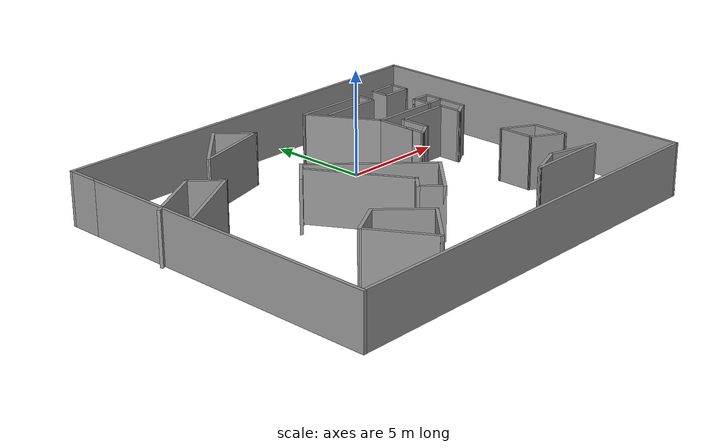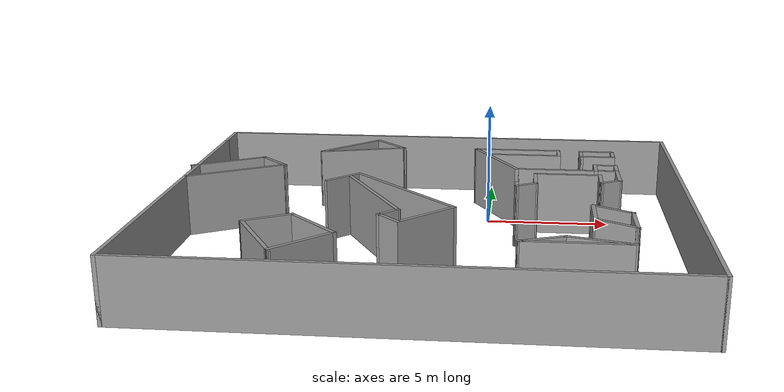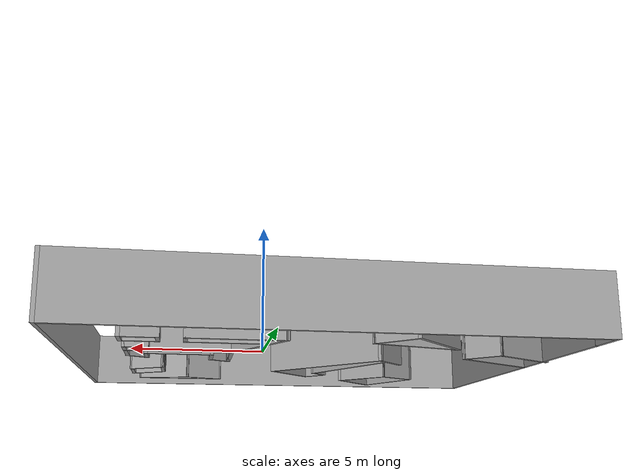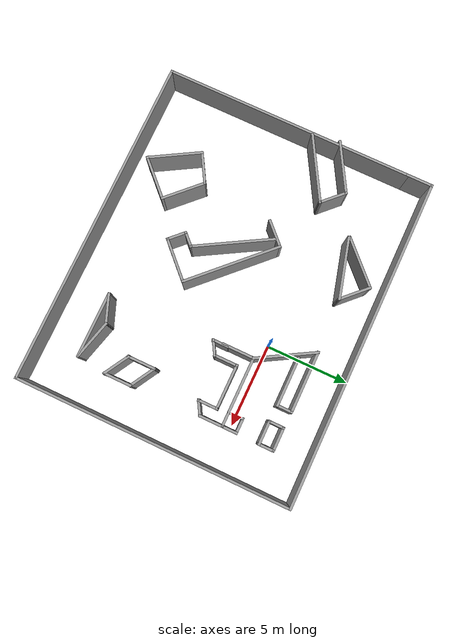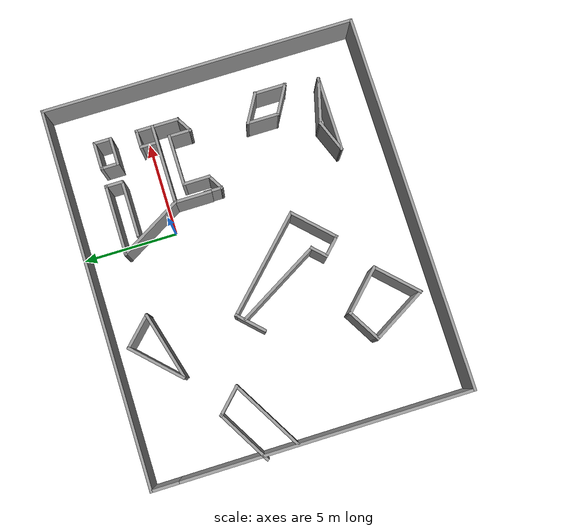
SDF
<?xml version='1.0'?>
<sdf version='1.7'>
  <model name='paper6'>
    <pose>-2.36416 -3.61547 0 0 -0 0</pose>
    <link name='Wall_10'>
      <collision name='Wall_10_Collision'>
        <geometry>
          <box>
            <size>4.25 0.15 2.5</size>
          </box>
        </geometry>
        <pose>0 0 1.25 0 -0 0</pose>
      </collision>
      <visual name='Wall_10_Visual'>
        <pose>0 0 1.25 0 -0 0</pose>
        <geometry>
          <box>
            <size>4.25 0.15 2.5</size>
          </box>
        </geometry>
        <material>
          <script>
            <uri>file://media/materials/scripts/gazebo.material</uri>
            <name>Gazebo/Grey</name>
          </script>
          <ambient>1 1 1 1</ambient>
        </material>
        <meta>
          <layer>0</layer>
        </meta>
      </visual>
      <pose>-7.97317 1.83972 0 0 -0 0.523599</pose>
    </link>
    <link name='Wall_11'>
      <collision name='Wall_11_Collision'>
        <geometry>
          <box>
            <size>1.75 0.15 2.5</size>
          </box>
        </geometry>
        <pose>0 0 1.25 0 -0 0</pose>
      </collision>
      <visual name='Wall_11_Visual'>
        <pose>0 0 1.25 0 -0 0</pose>
        <geometry>
          <box>
            <size>1.75 0.15 2.5</size>
          </box>
        </geometry>
        <material>
          <script>
            <uri>file://media/materials/scripts/gazebo.material</uri>
            <name>Gazebo/Grey</name>
          </script>
          <ambient>1 1 1 1</ambient>
        </material>
        <meta>
          <layer>0</layer>
        </meta>
      </visual>
      <pose>-6.76351 3.43041 0 0 -0 2.35619</pose>
    </link>
    <link name='Wall_12'>
      <collision name='Wall_12_Collision'>
        <geometry>
          <box>
            <size>3.25 0.15 2.5</size>
          </box>
        </geometry>
        <pose>0 0 1.25 0 -0 0</pose>
      </collision>
      <visual name='Wall_12_Visual'>
        <pose>0 0 1.25 0 -0 0</pose>
        <geometry>
          <box>
            <size>3.25 0.15 2.5</size>
          </box>
        </geometry>
        <material>
          <script>
            <uri>file://media/materials/scripts/gazebo.material</uri>
            <name>Gazebo/Grey</name>
          </script>
          <ambient>1 1 1 1</ambient>
        </material>
        <meta>
          <layer>0</layer>
        </meta>
      </visual>
      <pose>-8.67153 3.22109 0 0 -0 -2.61799</pose>
    </link>
    <link name='Wall_16'>
      <collision name='Wall_16_Collision'>
        <geometry>
          <box>
            <size>2 0.15 2.5</size>
          </box>
        </geometry>
        <pose>0 0 1.25 0 -0 0</pose>
      </collision>
      <visual name='Wall_16_Visual'>
        <pose>0 0 1.25 0 -0 0</pose>
        <geometry>
          <box>
            <size>2 0.15 2.5</size>
          </box>
        </geometry>
        <material>
          <script>
            <uri>file://media/materials/scripts/gazebo.material</uri>
            <name>Gazebo/Grey</name>
          </script>
          <ambient>1 1 1 1</ambient>
        </material>
        <meta>
          <layer>0</layer>
        </meta>
      </visual>
      <pose>-5.22554 -4.07303 0 0 -0 0.523599</pose>
    </link>
    <link name='Wall_17'>
      <collision name='Wall_17_Collision'>
        <geometry>
          <box>
            <size>2.75 0.15 2.5</size>
          </box>
        </geometry>
        <pose>0 0 1.25 0 -0 0</pose>
      </collision>
      <visual name='Wall_17_Visual'>
        <pose>0 0 1.25 0 -0 0</pose>
        <geometry>
          <box>
            <size>2.75 0.15 2.5</size>
          </box>
        </geometry>
        <material>
          <script>
            <uri>file://media/materials/scripts/gazebo.material</uri>
            <name>Gazebo/Grey</name>
          </script>
          <ambient>1 1 1 1</ambient>
        </material>
        <meta>
          <layer>0</layer>
        </meta>
      </visual>
      <pose>-3.50522 -4.52977 0 0 -0 -0.785398</pose>
    </link>
    <link name='Wall_18'>
      <collision name='Wall_18_Collision'>
        <geometry>
          <box>
            <size>2.75 0.15 2.5</size>
          </box>
        </geometry>
        <pose>0 0 1.25 0 -0 0</pose>
      </collision>
      <visual name='Wall_18_Visual'>
        <pose>0 0 1.25 0 -0 0</pose>
        <geometry>
          <box>
            <size>2.75 0.15 2.5</size>
          </box>
        </geometry>
        <material>
          <script>
            <uri>file://media/materials/scripts/gazebo.material</uri>
            <name>Gazebo/Grey</name>
          </script>
          <ambient>1 1 1 1</ambient>
        </material>
        <meta>
          <layer>0</layer>
        </meta>
      </visual>
      <pose>-3.50522 -6.36824 0 0 -0 -2.35619</pose>
    </link>
    <link name='Wall_19'>
      <collision name='Wall_19_Collision'>
        <geometry>
          <box>
            <size>3.33436 0.15 2.5</size>
          </box>
        </geometry>
        <pose>0 0 1.25 0 -0 0</pose>
      </collision>
      <visual name='Wall_19_Visual'>
        <pose>0 0 1.25 0 -0 0</pose>
        <geometry>
          <box>
            <size>3.33436 0.15 2.5</size>
          </box>
        </geometry>
        <material>
          <script>
            <uri>file://media/materials/scripts/gazebo.material</uri>
            <name>Gazebo/Grey</name>
          </script>
          <ambient>1 1 1 1</ambient>
        </material>
        <meta>
          <layer>0</layer>
        </meta>
      </visual>
      <pose>-5.22554 -5.9115 0 0 -0 2.09801</pose>
    </link>
    <link name='Wall_21'>
      <collision name='Wall_21_Collision'>
        <geometry>
          <box>
            <size>1.75 0.15 2.5</size>
          </box>
        </geometry>
        <pose>0 0 1.25 0 -0 0</pose>
      </collision>
      <visual name='Wall_21_Visual'>
        <pose>0 0 1.25 0 -0 0</pose>
        <geometry>
          <box>
            <size>1.75 0.15 2.5</size>
          </box>
        </geometry>
        <material>
          <script>
            <uri>file://media/materials/scripts/gazebo.material</uri>
            <name>Gazebo/Grey</name>
          </script>
          <ambient>1 1 1 1</ambient>
        </material>
        <meta>
          <layer>0</layer>
        </meta>
      </visual>
      <pose>-3.41387 1.28736 0 0 -0 0.785398</pose>
    </link>
    <link name='Wall_22'>
      <collision name='Wall_22_Collision'>
        <geometry>
          <box>
            <size>6 0.15 2.5</size>
          </box>
        </geometry>
        <pose>0 0 1.25 0 -0 0</pose>
      </collision>
      <visual name='Wall_22_Visual'>
        <pose>0 0 1.25 0 -0 0</pose>
        <geometry>
          <box>
            <size>6 0.15 2.5</size>
          </box>
        </geometry>
        <material>
          <script>
            <uri>file://media/materials/scripts/gazebo.material</uri>
            <name>Gazebo/Grey</name>
          </script>
          <ambient>1 1 1 1</ambient>
        </material>
        <meta>
          <layer>0</layer>
        </meta>
      </visual>
      <pose>-0.7799 -0.215241 0 0 -0 -0.785398</pose>
    </link>
    <link name='Wall_23'>
      <collision name='Wall_23_Collision'>
        <geometry>
          <box>
            <size>2.75 0.15 2.5</size>
          </box>
        </geometry>
        <pose>0 0 1.25 0 -0 0</pose>
      </collision>
      <visual name='Wall_23_Visual'>
        <pose>0 0 1.25 0 -0 0</pose>
        <geometry>
          <box>
            <size>2.75 0.15 2.5</size>
          </box>
        </geometry>
        <material>
          <script>
            <uri>file://media/materials/scripts/gazebo.material</uri>
            <name>Gazebo/Grey</name>
          </script>
          <ambient>1 1 1 1</ambient>
        </material>
        <meta>
          <layer>0</layer>
        </meta>
      </visual>
      <pose>0.369149 -3.20277 0 0 -0 -2.35619</pose>
    </link>
    <link name='Wall_24'>
      <collision name='Wall_24_Collision'>
        <geometry>
          <box>
            <size>1.25 0.15 2.5</size>
          </box>
        </geometry>
        <pose>0 0 1.25 0 -0 0</pose>
      </collision>
      <visual name='Wall_24_Visual'>
        <pose>0 0 1.25 0 -0 0</pose>
        <geometry>
          <box>
            <size>1.25 0.15 2.5</size>
          </box>
        </geometry>
        <material>
          <script>
            <uri>file://media/materials/scripts/gazebo.material</uri>
            <name>Gazebo/Grey</name>
          </script>
          <ambient>1 1 1 1</ambient>
        </material>
        <meta>
          <layer>0</layer>
        </meta>
      </visual>
      <pose>-0.938999 -3.7331 0 0 -0 2.35619</pose>
    </link>
    <link name='Wall_25'>
      <collision name='Wall_25_Collision'>
        <geometry>
          <box>
            <size>1 0.15 2.5</size>
          </box>
        </geometry>
        <pose>0 0 1.25 0 -0 0</pose>
      </collision>
      <visual name='Wall_25_Visual'>
        <pose>0 0 1.25 0 -0 0</pose>
        <geometry>
          <box>
            <size>1 0.15 2.5</size>
          </box>
        </geometry>
        <material>
          <script>
            <uri>file://media/materials/scripts/gazebo.material</uri>
            <name>Gazebo/Grey</name>
          </script>
          <ambient>1 1 1 1</ambient>
        </material>
        <meta>
          <layer>0</layer>
        </meta>
      </visual>
      <pose>-1.02739 -3.04367 0 0 -0 0.785398</pose>
    </link>
    <link name='Wall_26'>
      <collision name='Wall_26_Collision'>
        <geometry>
          <box>
            <size>5 0.15 2.5</size>
          </box>
        </geometry>
        <pose>0 0 1.25 0 -0 0</pose>
      </collision>
      <visual name='Wall_26_Visual'>
        <pose>0 0 1.25 0 -0 0</pose>
        <geometry>
          <box>
            <size>5 0.15 2.5</size>
          </box>
        </geometry>
        <material>
          <script>
            <uri>file://media/materials/scripts/gazebo.material</uri>
            <name>Gazebo/Grey</name>
          </script>
          <ambient>1 1 1 1</ambient>
        </material>
        <meta>
          <layer>0</layer>
        </meta>
      </visual>
      <pose>-1.93937 -0.643036 0 0 -0 2.0944</pose>
    </link>
    <link name='Wall_28'>
      <collision name='Wall_28_Collision'>
        <geometry>
          <box>
            <size>3.75 0.15 2.5</size>
          </box>
        </geometry>
        <pose>0 0 1.25 0 -0 0</pose>
      </collision>
      <visual name='Wall_28_Visual'>
        <pose>0 0 1.25 0 -0 0</pose>
        <geometry>
          <box>
            <size>3.75 0.15 2.5</size>
          </box>
        </geometry>
        <material>
          <script>
            <uri>file://media/materials/scripts/gazebo.material</uri>
            <name>Gazebo/Grey</name>
          </script>
          <ambient>1 1 1 1</ambient>
        </material>
        <meta>
          <layer>0</layer>
        </meta>
      </visual>
      <pose>-3.26442 5.65385 0 0 -0 0.261799</pose>
    </link>
    <link name='Wall_29'>
      <collision name='Wall_29_Collision'>
        <geometry>
          <box>
            <size>2 0.15 2.5</size>
          </box>
        </geometry>
        <pose>0 0 1.25 0 -0 0</pose>
      </collision>
      <visual name='Wall_29_Visual'>
        <pose>0 0 1.25 0 -0 0</pose>
        <geometry>
          <box>
            <size>2 0.15 2.5</size>
          </box>
        </geometry>
        <material>
          <script>
            <uri>file://media/materials/scripts/gazebo.material</uri>
            <name>Gazebo/Grey</name>
          </script>
          <ambient>1 1 1 1</ambient>
        </material>
        <meta>
          <layer>0</layer>
        </meta>
      </visual>
      <pose>-2.17983 6.77379 0 0 -0 2.35619</pose>
    </link>
    <link name='Wall_30'>
      <collision name='Wall_30_Collision'>
        <geometry>
          <box>
            <size>3.25 0.15 2.5</size>
          </box>
        </geometry>
        <pose>0 0 1.25 0 -0 0</pose>
      </collision>
      <visual name='Wall_30_Visual'>
        <pose>0 0 1.25 0 -0 0</pose>
        <geometry>
          <box>
            <size>3.25 0.15 2.5</size>
          </box>
        </geometry>
        <material>
          <script>
            <uri>file://media/materials/scripts/gazebo.material</uri>
            <name>Gazebo/Grey</name>
          </script>
          <ambient>1 1 1 1</ambient>
        </material>
        <meta>
          <layer>0</layer>
        </meta>
      </visual>
      <pose>-3.92991 6.33185 0 0 -0 -2.35619</pose>
    </link>
    <link name='Wall_32'>
      <collision name='Wall_32_Collision'>
        <geometry>
          <box>
            <size>4 0.15 2.5</size>
          </box>
        </geometry>
        <pose>0 0 1.25 0 -0 0</pose>
      </collision>
      <visual name='Wall_32_Visual'>
        <pose>0 0 1.25 0 -0 0</pose>
        <geometry>
          <box>
            <size>4 0.15 2.5</size>
          </box>
        </geometry>
        <material>
          <script>
            <uri>file://media/materials/scripts/gazebo.material</uri>
            <name>Gazebo/Grey</name>
          </script>
          <ambient>1 1 1 1</ambient>
        </material>
        <meta>
          <layer>0</layer>
        </meta>
      </visual>
      <pose>5.60922 -5.73669 0 0 -0 0</pose>
    </link>
    <link name='Wall_33'>
      <collision name='Wall_33_Collision'>
        <geometry>
          <box>
            <size>2.5 0.15 2.5</size>
          </box>
        </geometry>
        <pose>0 0 1.25 0 -0 0</pose>
      </collision>
      <visual name='Wall_33_Visual'>
        <pose>0 0 1.25 0 -0 0</pose>
        <geometry>
          <box>
            <size>2.5 0.15 2.5</size>
          </box>
        </geometry>
        <material>
          <script>
            <uri>file://media/materials/scripts/gazebo.material</uri>
            <name>Gazebo/Grey</name>
          </script>
          <ambient>1 1 1 1</ambient>
        </material>
        <meta>
          <layer>0</layer>
        </meta>
      </visual>
      <pose>6.39926 -5.43258 0 0 -0 2.87979</pose>
    </link>
    <link name='Wall_34'>
      <collision name='Wall_34_Collision'>
        <geometry>
          <box>
            <size>1.84309 0.15 2.5</size>
          </box>
        </geometry>
        <pose>0 0 1.25 0 -0 0</pose>
      </collision>
      <visual name='Wall_34_Visual'>
        <pose>0 0 1.25 0 -0 0</pose>
        <geometry>
          <box>
            <size>1.84309 0.15 2.5</size>
          </box>
        </geometry>
        <material>
          <script>
            <uri>file://media/materials/scripts/gazebo.material</uri>
            <name>Gazebo/Grey</name>
          </script>
          <ambient>1 1 1 1</ambient>
        </material>
        <meta>
          <layer>0</layer>
        </meta>
      </visual>
      <pose>4.47426 -5.43258 0 0 -0 -2.77414</pose>
    </link>
    <link name='Wall_36'>
      <collision name='Wall_36_Collision'>
        <geometry>
          <box>
            <size>1.75 0.15 2.5</size>
          </box>
        </geometry>
        <pose>0 0 1.25 0 -0 0</pose>
      </collision>
      <visual name='Wall_36_Visual'>
        <pose>0 0 1.25 0 -0 0</pose>
        <geometry>
          <box>
            <size>1.75 0.15 2.5</size>
          </box>
        </geometry>
        <material>
          <script>
            <uri>file://media/materials/scripts/gazebo.material</uri>
            <name>Gazebo/Grey</name>
          </script>
          <ambient>1 1 1 1</ambient>
        </material>
        <meta>
          <layer>0</layer>
        </meta>
      </visual>
      <pose>6.37084 -2.38706 0 0 -0 -1.5708</pose>
    </link>
    <link name='Wall_37'>
      <collision name='Wall_37_Collision'>
        <geometry>
          <box>
            <size>1.75 0.15 2.5</size>
          </box>
        </geometry>
        <pose>0 0 1.25 0 -0 0</pose>
      </collision>
      <visual name='Wall_37_Visual'>
        <pose>0 0 1.25 0 -0 0</pose>
        <geometry>
          <box>
            <size>1.75 0.15 2.5</size>
          </box>
        </geometry>
        <material>
          <script>
            <uri>file://media/materials/scripts/gazebo.material</uri>
            <name>Gazebo/Grey</name>
          </script>
          <ambient>1 1 1 1</ambient>
        </material>
        <meta>
          <layer>0</layer>
        </meta>
      </visual>
      <pose>7.06366 -3.58706 0 0 -0 -0.523599</pose>
    </link>
    <link name='Wall_38'>
      <collision name='Wall_38_Collision'>
        <geometry>
          <box>
            <size>1.75 0.15 2.5</size>
          </box>
        </geometry>
        <pose>0 0 1.25 0 -0 0</pose>
      </collision>
      <visual name='Wall_38_Visual'>
        <pose>0 0 1.25 0 -0 0</pose>
        <geometry>
          <box>
            <size>1.75 0.15 2.5</size>
          </box>
        </geometry>
        <material>
          <script>
            <uri>file://media/materials/scripts/gazebo.material</uri>
            <name>Gazebo/Grey</name>
          </script>
          <ambient>1 1 1 1</ambient>
        </material>
        <meta>
          <layer>0</layer>
        </meta>
      </visual>
      <pose>7.75648 -3.18706 0 0 -0 1.5708</pose>
    </link>
    <link name='Wall_39'>
      <collision name='Wall_39_Collision'>
        <geometry>
          <box>
            <size>1.75 0.15 2.5</size>
          </box>
        </geometry>
        <pose>0 0 1.25 0 -0 0</pose>
      </collision>
      <visual name='Wall_39_Visual'>
        <pose>0 0 1.25 0 -0 0</pose>
        <geometry>
          <box>
            <size>1.75 0.15 2.5</size>
          </box>
        </geometry>
        <material>
          <script>
            <uri>file://media/materials/scripts/gazebo.material</uri>
            <name>Gazebo/Grey</name>
          </script>
          <ambient>1 1 1 1</ambient>
        </material>
        <meta>
          <layer>0</layer>
        </meta>
      </visual>
      <pose>7.06366 -1.98706 0 0 -0 2.61799</pose>
    </link>
    <link name='Wall_4'>
      <collision name='Wall_4_Collision'>
        <geometry>
          <box>
            <size>15.25 0.15 2.5</size>
          </box>
        </geometry>
        <pose>0 0 1.25 0 -0 0</pose>
      </collision>
      <visual name='Wall_4_Visual'>
        <pose>0 0 1.25 0 -0 0</pose>
        <geometry>
          <box>
            <size>15.25 0.15 2.5</size>
          </box>
        </geometry>
        <material>
          <script>
            <uri>file://media/materials/scripts/gazebo.material</uri>
            <name>Gazebo/Grey</name>
          </script>
          <ambient>1 1 1 1</ambient>
        </material>
        <meta>
          <layer>0</layer>
        </meta>
      </visual>
      <pose>-9.80868 -0.75 0 0 -0 -1.5708</pose>
    </link>
    <link name='Wall_41'>
      <collision name='Wall_41_Collision'>
        <geometry>
          <box>
            <size>2 0.15 2.5</size>
          </box>
        </geometry>
        <pose>0 0 1.25 0 -0 0</pose>
      </collision>
      <visual name='Wall_41_Visual'>
        <pose>0 0 1.25 0 -0 0</pose>
        <geometry>
          <box>
            <size>2 0.15 2.5</size>
          </box>
        </geometry>
        <material>
          <script>
            <uri>file://media/materials/scripts/gazebo.material</uri>
            <name>Gazebo/Grey</name>
          </script>
          <ambient>1 1 1 1</ambient>
        </material>
        <meta>
          <layer>0</layer>
        </meta>
      </visual>
      <pose>3.52462 2.21076 0 0 -0 1.5708</pose>
    </link>
    <link name='Wall_42'>
      <collision name='Wall_42_Collision'>
        <geometry>
          <box>
            <size>4.25 0.15 2.5</size>
          </box>
        </geometry>
        <pose>0 0 1.25 0 -0 0</pose>
      </collision>
      <visual name='Wall_42_Visual'>
        <pose>0 0 1.25 0 -0 0</pose>
        <geometry>
          <box>
            <size>4.25 0.15 2.5</size>
          </box>
        </geometry>
        <material>
          <script>
            <uri>file://media/materials/scripts/gazebo.material</uri>
            <name>Gazebo/Grey</name>
          </script>
          <ambient>1 1 1 1</ambient>
        </material>
        <meta>
          <layer>0</layer>
        </meta>
      </visual>
      <pose>5.57462 3.13577 0 0 -0 0</pose>
    </link>
    <link name='Wall_43'>
      <collision name='Wall_43_Collision'>
        <geometry>
          <box>
            <size>1.5 0.15 2.5</size>
          </box>
        </geometry>
        <pose>0 0 1.25 0 -0 0</pose>
      </collision>
      <visual name='Wall_43_Visual'>
        <pose>0 0 1.25 0 -0 0</pose>
        <geometry>
          <box>
            <size>1.5 0.15 2.5</size>
          </box>
        </geometry>
        <material>
          <script>
            <uri>file://media/materials/scripts/gazebo.material</uri>
            <name>Gazebo/Grey</name>
          </script>
          <ambient>1 1 1 1</ambient>
        </material>
        <meta>
          <layer>0</layer>
        </meta>
      </visual>
      <pose>7.62462 2.46076 0 0 -0 -1.5708</pose>
    </link>
    <link name='Wall_44'>
      <collision name='Wall_44_Collision'>
        <geometry>
          <box>
            <size>1 0.15 2.5</size>
          </box>
        </geometry>
        <pose>0 0 1.25 0 -0 0</pose>
      </collision>
      <visual name='Wall_44_Visual'>
        <pose>0 0 1.25 0 -0 0</pose>
        <geometry>
          <box>
            <size>1 0.15 2.5</size>
          </box>
        </geometry>
        <material>
          <script>
            <uri>file://media/materials/scripts/gazebo.material</uri>
            <name>Gazebo/Grey</name>
          </script>
          <ambient>1 1 1 1</ambient>
        </material>
        <meta>
          <layer>0</layer>
        </meta>
      </visual>
      <pose>7.25656 1.57326 0 0 -0 -2.61799</pose>
    </link>
    <link name='Wall_45'>
      <collision name='Wall_45_Collision'>
        <geometry>
          <box>
            <size>1.25 0.15 2.5</size>
          </box>
        </geometry>
        <pose>0 0 1.25 0 -0 0</pose>
      </collision>
      <visual name='Wall_45_Visual'>
        <pose>0 0 1.25 0 -0 0</pose>
        <geometry>
          <box>
            <size>1.25 0.15 2.5</size>
          </box>
        </geometry>
        <material>
          <script>
            <uri>file://media/materials/scripts/gazebo.material</uri>
            <name>Gazebo/Grey</name>
          </script>
          <ambient>1 1 1 1</ambient>
        </material>
        <meta>
          <layer>0</layer>
        </meta>
      </visual>
      <pose>6.8885 1.91077 0 0 -0 1.5708</pose>
    </link>
    <link name='Wall_46'>
      <collision name='Wall_46_Collision'>
        <geometry>
          <box>
            <size>2.75 0.15 2.5</size>
          </box>
        </geometry>
        <pose>0 0 1.25 0 -0 0</pose>
      </collision>
      <visual name='Wall_46_Visual'>
        <pose>0 0 1.25 0 -0 0</pose>
        <geometry>
          <box>
            <size>2.75 0.15 2.5</size>
          </box>
        </geometry>
        <material>
          <script>
            <uri>file://media/materials/scripts/gazebo.material</uri>
            <name>Gazebo/Grey</name>
          </script>
          <ambient>1 1 1 1</ambient>
        </material>
        <meta>
          <layer>0</layer>
        </meta>
      </visual>
      <pose>5.5885 2.46076 0 0 -0 3.14159</pose>
    </link>
    <link name='Wall_47'>
      <collision name='Wall_47_Collision'>
        <geometry>
          <box>
            <size>1.5 0.15 2.5</size>
          </box>
        </geometry>
        <pose>0 0 1.25 0 -0 0</pose>
      </collision>
      <visual name='Wall_47_Visual'>
        <pose>0 0 1.25 0 -0 0</pose>
        <geometry>
          <box>
            <size>1.5 0.15 2.5</size>
          </box>
        </geometry>
        <material>
          <script>
            <uri>file://media/materials/scripts/gazebo.material</uri>
            <name>Gazebo/Grey</name>
          </script>
          <ambient>1 1 1 1</ambient>
        </material>
        <meta>
          <layer>0</layer>
        </meta>
      </visual>
      <pose>4.2885 1.78577 0 0 -0 -1.5708</pose>
    </link>
    <link name='Wall_48'>
      <collision name='Wall_48_Collision'>
        <geometry>
          <box>
            <size>1 0.15 2.5</size>
          </box>
        </geometry>
        <pose>0 0 1.25 0 -0 0</pose>
      </collision>
      <visual name='Wall_48_Visual'>
        <pose>0 0 1.25 0 -0 0</pose>
        <geometry>
          <box>
            <size>1 0.15 2.5</size>
          </box>
        </geometry>
        <material>
          <script>
            <uri>file://media/materials/scripts/gazebo.material</uri>
            <name>Gazebo/Grey</name>
          </script>
          <ambient>1 1 1 1</ambient>
        </material>
        <meta>
          <layer>0</layer>
        </meta>
      </visual>
      <pose>3.92044 0.898265 0 0 -0 -2.61799</pose>
    </link>
    <link name='Wall_49'>
      <collision name='Wall_49_Collision'>
        <geometry>
          <box>
            <size>1 0.15 2.5</size>
          </box>
        </geometry>
        <pose>0 0 1.25 0 -0 0</pose>
      </collision>
      <visual name='Wall_49_Visual'>
        <pose>0 0 1.25 0 -0 0</pose>
        <geometry>
          <box>
            <size>1 0.15 2.5</size>
          </box>
        </geometry>
        <material>
          <script>
            <uri>file://media/materials/scripts/gazebo.material</uri>
            <name>Gazebo/Grey</name>
          </script>
          <ambient>1 1 1 1</ambient>
        </material>
        <meta>
          <layer>0</layer>
        </meta>
      </visual>
      <pose>3.55238 1.11077 0 0 -0 1.5708</pose>
    </link>
    <link name='Wall_5'>
      <collision name='Wall_5_Collision'>
        <geometry>
          <box>
            <size>20 0.15 2.5</size>
          </box>
        </geometry>
        <pose>0 0 1.25 0 -0 0</pose>
      </collision>
      <visual name='Wall_5_Visual'>
        <pose>0 0 1.25 0 -0 0</pose>
        <geometry>
          <box>
            <size>20 0.15 2.5</size>
          </box>
        </geometry>
        <material>
          <script>
            <uri>file://media/materials/scripts/gazebo.material</uri>
            <name>Gazebo/Grey</name>
          </script>
          <ambient>1 1 1 1</ambient>
        </material>
        <meta>
          <layer>0</layer>
        </meta>
      </visual>
      <pose>0.11632 -8.3 0 0 -0 0</pose>
    </link>
    <link name='Wall_51'>
      <collision name='Wall_51_Collision'>
        <geometry>
          <box>
            <size>3.75 0.15 2.5</size>
          </box>
        </geometry>
        <pose>0 0 1.25 0 -0 0</pose>
      </collision>
      <visual name='Wall_51_Visual'>
        <pose>0 0 1.25 0 -0 0</pose>
        <geometry>
          <box>
            <size>3.75 0.15 2.5</size>
          </box>
        </geometry>
        <material>
          <script>
            <uri>file://media/materials/scripts/gazebo.material</uri>
            <name>Gazebo/Grey</name>
          </script>
          <ambient>1 1 1 1</ambient>
        </material>
        <meta>
          <layer>0</layer>
        </meta>
      </visual>
      <pose>2.62462 4.69461 0 0 -0 2.0944</pose>
    </link>
    <link name='Wall_52'>
      <collision name='Wall_52_Collision'>
        <geometry>
          <box>
            <size>3.75 0.15 2.5</size>
          </box>
        </geometry>
        <pose>0 0 1.25 0 -0 0</pose>
      </collision>
      <visual name='Wall_52_Visual'>
        <pose>0 0 1.25 0 -0 0</pose>
        <geometry>
          <box>
            <size>3.75 0.15 2.5</size>
          </box>
        </geometry>
        <material>
          <script>
            <uri>file://media/materials/scripts/gazebo.material</uri>
            <name>Gazebo/Grey</name>
          </script>
          <ambient>1 1 1 1</ambient>
        </material>
        <meta>
          <layer>0</layer>
        </meta>
      </visual>
      <pose>3.52462 6.25346 0 0 -0 0</pose>
    </link>
    <link name='Wall_53'>
      <collision name='Wall_53_Collision'>
        <geometry>
          <box>
            <size>1 0.15 2.5</size>
          </box>
        </geometry>
        <pose>0 0 1.25 0 -0 0</pose>
      </collision>
      <visual name='Wall_53_Visual'>
        <pose>0 0 1.25 0 -0 0</pose>
        <geometry>
          <box>
            <size>1 0.15 2.5</size>
          </box>
        </geometry>
        <material>
          <script>
            <uri>file://media/materials/scripts/gazebo.material</uri>
            <name>Gazebo/Grey</name>
          </script>
          <ambient>1 1 1 1</ambient>
        </material>
        <meta>
          <layer>0</layer>
        </meta>
      </visual>
      <pose>5.32462 5.82846 0 0 -0 -1.5708</pose>
    </link>
    <link name='Wall_54'>
      <collision name='Wall_54_Collision'>
        <geometry>
          <box>
            <size>3 0.15 2.5</size>
          </box>
        </geometry>
        <pose>0 0 1.25 0 -0 0</pose>
      </collision>
      <visual name='Wall_54_Visual'>
        <pose>0 0 1.25 0 -0 0</pose>
        <geometry>
          <box>
            <size>3 0.15 2.5</size>
          </box>
        </geometry>
        <material>
          <script>
            <uri>file://media/materials/scripts/gazebo.material</uri>
            <name>Gazebo/Grey</name>
          </script>
          <ambient>1 1 1 1</ambient>
        </material>
        <meta>
          <layer>0</layer>
        </meta>
      </visual>
      <pose>3.89962 5.40346 0 0 -0 3.14159</pose>
    </link>
    <link name='Wall_57'>
      <collision name='Wall_57_Collision'>
        <geometry>
          <box>
            <size>1 0.15 2.5</size>
          </box>
        </geometry>
        <pose>0 0 1.25 0 -0 0</pose>
      </collision>
      <visual name='Wall_57_Visual'>
        <pose>0 0 1.25 0 -0 0</pose>
        <geometry>
          <box>
            <size>1 0.15 2.5</size>
          </box>
        </geometry>
        <material>
          <script>
            <uri>file://media/materials/scripts/gazebo.material</uri>
            <name>Gazebo/Grey</name>
          </script>
          <ambient>1 1 1 1</ambient>
        </material>
        <meta>
          <layer>0</layer>
        </meta>
      </visual>
      <pose>6.29104 5.7818 0 0 -0 -1.5708</pose>
    </link>
    <link name='Wall_58'>
      <collision name='Wall_58_Collision'>
        <geometry>
          <box>
            <size>1.5 0.15 2.5</size>
          </box>
        </geometry>
        <pose>0 0 1.25 0 -0 0</pose>
      </collision>
      <visual name='Wall_58_Visual'>
        <pose>0 0 1.25 0 -0 0</pose>
        <geometry>
          <box>
            <size>1.5 0.15 2.5</size>
          </box>
        </geometry>
        <material>
          <script>
            <uri>file://media/materials/scripts/gazebo.material</uri>
            <name>Gazebo/Grey</name>
          </script>
          <ambient>1 1 1 1</ambient>
        </material>
        <meta>
          <layer>0</layer>
        </meta>
      </visual>
      <pose>6.96604 5.3568 0 0 -0 0</pose>
    </link>
    <link name='Wall_59'>
      <collision name='Wall_59_Collision'>
        <geometry>
          <box>
            <size>1 0.15 2.5</size>
          </box>
        </geometry>
        <pose>0 0 1.25 0 -0 0</pose>
      </collision>
      <visual name='Wall_59_Visual'>
        <pose>0 0 1.25 0 -0 0</pose>
        <geometry>
          <box>
            <size>1 0.15 2.5</size>
          </box>
        </geometry>
        <material>
          <script>
            <uri>file://media/materials/scripts/gazebo.material</uri>
            <name>Gazebo/Grey</name>
          </script>
          <ambient>1 1 1 1</ambient>
        </material>
        <meta>
          <layer>0</layer>
        </meta>
      </visual>
      <pose>7.64104 5.7818 0 0 -0 1.5708</pose>
    </link>
    <link name='Wall_6'>
      <collision name='Wall_6_Collision'>
        <geometry>
          <box>
            <size>16.75 0.15 2.5</size>
          </box>
        </geometry>
        <pose>0 0 1.25 0 -0 0</pose>
      </collision>
      <visual name='Wall_6_Visual'>
        <pose>0 0 1.25 0 -0 0</pose>
        <geometry>
          <box>
            <size>16.75 0.15 2.5</size>
          </box>
        </geometry>
        <material>
          <script>
            <uri>file://media/materials/scripts/gazebo.material</uri>
            <name>Gazebo/Grey</name>
          </script>
          <ambient>1 1 1 1</ambient>
        </material>
        <meta>
          <layer>0</layer>
        </meta>
      </visual>
      <pose>10.0413 0 0 0 -0 1.5708</pose>
    </link>
    <link name='Wall_60'>
      <collision name='Wall_60_Collision'>
        <geometry>
          <box>
            <size>1.5 0.15 2.5</size>
          </box>
        </geometry>
        <pose>0 0 1.25 0 -0 0</pose>
      </collision>
      <visual name='Wall_60_Visual'>
        <pose>0 0 1.25 0 -0 0</pose>
        <geometry>
          <box>
            <size>1.5 0.15 2.5</size>
          </box>
        </geometry>
        <material>
          <script>
            <uri>file://media/materials/scripts/gazebo.material</uri>
            <name>Gazebo/Grey</name>
          </script>
          <ambient>1 1 1 1</ambient>
        </material>
        <meta>
          <layer>0</layer>
        </meta>
      </visual>
      <pose>6.96604 6.2068 0 0 -0 3.14159</pose>
    </link>
    <link name='Wall_62'>
      <collision name='Wall_62_Collision'>
        <geometry>
          <box>
            <size>1 0.15 2.5</size>
          </box>
        </geometry>
        <pose>0 0 1.25 0 -0 0</pose>
      </collision>
      <visual name='Wall_62_Visual'>
        <pose>0 0 1.25 0 -0 0</pose>
        <geometry>
          <box>
            <size>1 0.15 2.5</size>
          </box>
        </geometry>
        <material>
          <script>
            <uri>file://media/materials/scripts/gazebo.material</uri>
            <name>Gazebo/Grey</name>
          </script>
          <ambient>1 1 1 1</ambient>
        </material>
        <meta>
          <layer>0</layer>
        </meta>
      </visual>
      <pose>7.62462 3.56076 0 0 -0 1.5708</pose>
    </link>
    <link name='Wall_63'>
      <collision name='Wall_63_Collision'>
        <geometry>
          <box>
            <size>1 0.15 2.5</size>
          </box>
        </geometry>
        <pose>0 0 1.25 0 -0 0</pose>
      </collision>
      <visual name='Wall_63_Visual'>
        <pose>0 0 1.25 0 -0 0</pose>
        <geometry>
          <box>
            <size>1 0.15 2.5</size>
          </box>
        </geometry>
        <material>
          <script>
            <uri>file://media/materials/scripts/gazebo.material</uri>
            <name>Gazebo/Grey</name>
          </script>
          <ambient>1 1 1 1</ambient>
        </material>
        <meta>
          <layer>0</layer>
        </meta>
      </visual>
      <pose>7.19962 3.98576 0 0 -0 3.14159</pose>
    </link>
    <link name='Wall_64'>
      <collision name='Wall_64_Collision'>
        <geometry>
          <box>
            <size>1 0.15 2.5</size>
          </box>
        </geometry>
        <pose>0 0 1.25 0 -0 0</pose>
      </collision>
      <visual name='Wall_64_Visual'>
        <pose>0 0 1.25 0 -0 0</pose>
        <geometry>
          <box>
            <size>1 0.15 2.5</size>
          </box>
        </geometry>
        <material>
          <script>
            <uri>file://media/materials/scripts/gazebo.material</uri>
            <name>Gazebo/Grey</name>
          </script>
          <ambient>1 1 1 1</ambient>
        </material>
        <meta>
          <layer>0</layer>
        </meta>
      </visual>
      <pose>6.77462 3.56076 0 0 -0 -1.5708</pose>
    </link>
    <link name='Wall_7'>
      <collision name='Wall_7_Collision'>
        <geometry>
          <box>
            <size>20 0.15 2.5</size>
          </box>
        </geometry>
        <pose>0 0 1.25 0 -0 0</pose>
      </collision>
      <visual name='Wall_7_Visual'>
        <pose>0 0 1.25 0 -0 0</pose>
        <geometry>
          <box>
            <size>20 0.15 2.5</size>
          </box>
        </geometry>
        <material>
          <script>
            <uri>file://media/materials/scripts/gazebo.material</uri>
            <name>Gazebo/Grey</name>
          </script>
          <ambient>1 1 1 1</ambient>
        </material>
        <meta>
          <layer>0</layer>
        </meta>
      </visual>
      <pose>0.11632 8.3 0 0 -0 3.14159</pose>
    </link>
    <link name='Wall_8'>
      <collision name='Wall_8_Collision'>
        <geometry>
          <box>
            <size>1.65 0.15 2.5</size>
          </box>
        </geometry>
        <pose>0 0 1.25 0 -0 0</pose>
      </collision>
      <visual name='Wall_8_Visual'>
        <pose>0 0 1.25 0 -0 0</pose>
        <geometry>
          <box>
            <size>1.65 0.15 2.5</size>
          </box>
        </geometry>
        <material>
          <script>
            <uri>file://media/materials/scripts/gazebo.material</uri>
            <name>Gazebo/Grey</name>
          </script>
          <ambient>1 1 1 1</ambient>
        </material>
        <meta>
          <layer>0</layer>
        </meta>
      </visual>
      <pose>-9.80868 7.55 0 0 -0 -1.5708</pose>
    </link>
    <static>1</static>
  </model>
</sdf>
